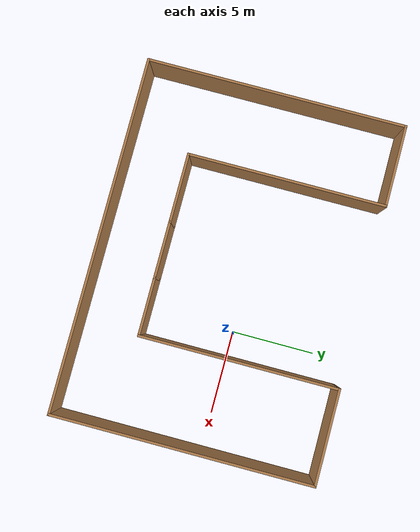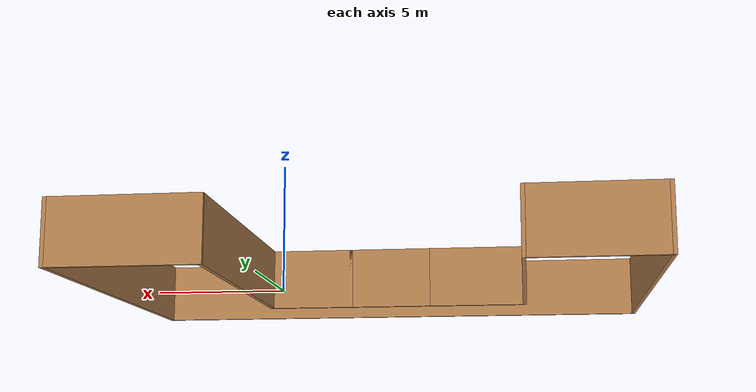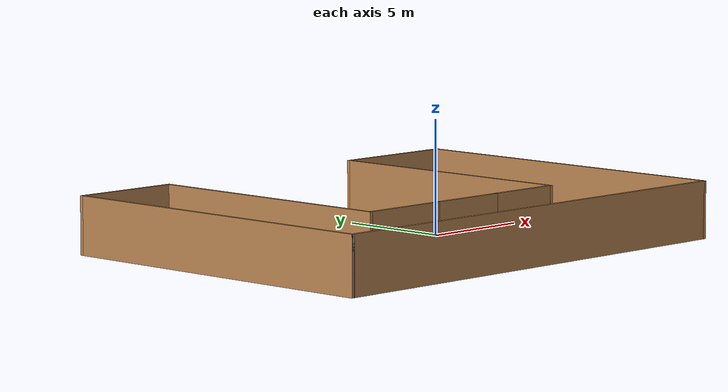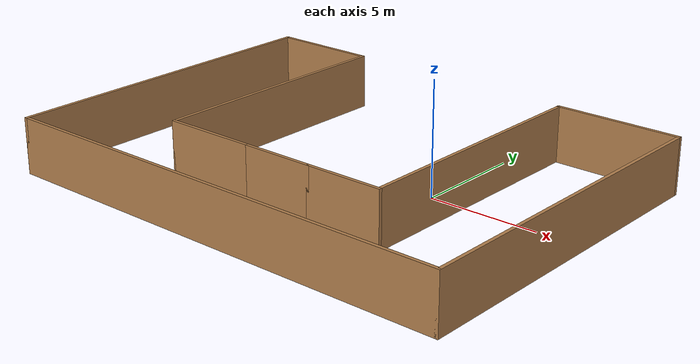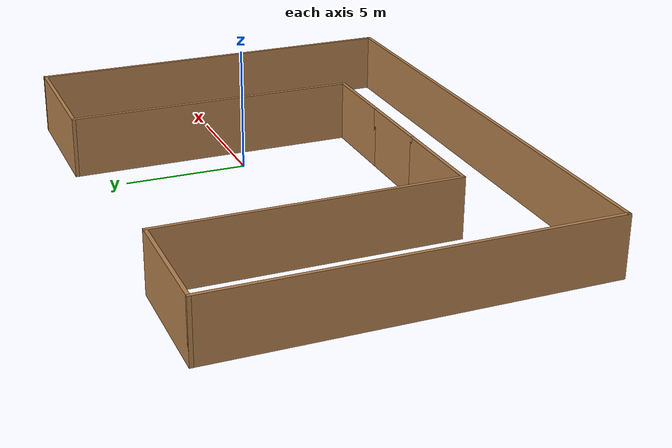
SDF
<?xml version='1.0'?>
<sdf version='1.7'>
  <model name='u_hallway_filled'>
    <pose>-3.53689 -1.1202 0 0 -0 0</pose>
    <link name='Wall_1'>
      <collision name='Wall_1_Collision'>
        <geometry>
          <box>
            <size>15.75 0.15 2.5</size>
          </box>
        </geometry>
        <pose>0 0 1.25 0 -0 0</pose>
      </collision>
      <visual name='Wall_1_Visual'>
        <pose>0 0 1.25 0 -0 0</pose>
        <geometry>
          <box>
            <size>15.75 0.15 2.5</size>
          </box>
        </geometry>
        <material>
          <script>
            <uri>file://media/materials/scripts/gazebo.material</uri>
            <name>Gazebo/Wood</name>
          </script>
          <ambient>1 1 1 1</ambient>
        </material>
        <meta>
          <layer>0</layer>
        </meta>
      </visual>
      <pose>-10.675 0 0 0 -0 -1.5708</pose>
    </link>
    <link name='Wall_13'>
      <collision name='Wall_13_Collision'>
        <geometry>
          <box>
            <size>5 0.15 2.5</size>
          </box>
        </geometry>
        <pose>0 0 1.25 0 -0 0</pose>
      </collision>
      <visual name='Wall_13_Visual'>
        <pose>0 0 1.25 0 -0 0</pose>
        <geometry>
          <box>
            <size>5 0.15 2.5</size>
          </box>
        </geometry>
        <material>
          <script>
            <uri>file://media/materials/scripts/gazebo.material</uri>
            <name>Gazebo/Wood</name>
          </script>
          <ambient>1 1 1 1</ambient>
        </material>
        <meta>
          <layer>0</layer>
        </meta>
      </visual>
      <pose>-8.25 7.8 0 0 -0 0</pose>
    </link>
    <link name='Wall_14'>
      <collision name='Wall_14_Collision'>
        <geometry>
          <box>
            <size>12 0.15 2.5</size>
          </box>
        </geometry>
        <pose>0 0 1.25 0 -0 0</pose>
      </collision>
      <visual name='Wall_14_Visual'>
        <pose>0 0 1.25 0 -0 0</pose>
        <geometry>
          <box>
            <size>12 0.15 2.5</size>
          </box>
        </geometry>
        <material>
          <script>
            <uri>file://media/materials/scripts/gazebo.material</uri>
            <name>Gazebo/Wood</name>
          </script>
          <ambient>1 1 1 1</ambient>
        </material>
        <meta>
          <layer>0</layer>
        </meta>
      </visual>
      <pose>-5.825 1.875 0 0 -0 -1.5708</pose>
    </link>
    <link name='Wall_2'>
      <collision name='Wall_2_Collision'>
        <geometry>
          <box>
            <size>0.15 0.15 2.5</size>
          </box>
        </geometry>
        <pose>0 0 1.25 0 -0 0</pose>
      </collision>
      <visual name='Wall_2_Visual'>
        <pose>0 0 1.25 0 -0 0</pose>
        <geometry>
          <box>
            <size>0.15 0.15 2.5</size>
          </box>
        </geometry>
        <material>
          <script>
            <uri>file://media/materials/scripts/gazebo.material</uri>
            <name>Gazebo/Grey</name>
          </script>
          <ambient>1 1 1 1</ambient>
        </material>
        <meta>
          <layer>0</layer>
        </meta>
      </visual>
      <pose>-10.675 -7.8 0 0 -0 0</pose>
    </link>
    <link name='Wall_24'>
      <collision name='Wall_24_Collision'>
        <geometry>
          <box>
            <size>4.25 0.15 2.5</size>
          </box>
        </geometry>
        <pose>0 0 1.25 0 -0 0</pose>
      </collision>
      <visual name='Wall_24_Visual'>
        <pose>0 0 1.25 0 -0 0</pose>
        <geometry>
          <box>
            <size>4.25 0.15 2.5</size>
          </box>
        </geometry>
        <material>
          <script>
            <uri>file://media/materials/scripts/gazebo.material</uri>
            <name>Gazebo/Wood</name>
          </script>
          <ambient>1 1 1 1</ambient>
        </material>
        <meta>
          <layer>0</layer>
        </meta>
      </visual>
      <pose>-3.775 -4.05 0 0 -0 0</pose>
    </link>
    <link name='Wall_25'>
      <collision name='Wall_25_Collision'>
        <geometry>
          <box>
            <size>3.5 0.15 2.5</size>
          </box>
        </geometry>
        <pose>0 0 1.25 0 -0 0</pose>
      </collision>
      <visual name='Wall_25_Visual'>
        <pose>0 0 1.25 0 -0 0</pose>
        <geometry>
          <box>
            <size>3.5 0.15 2.5</size>
          </box>
        </geometry>
        <material>
          <script>
            <uri>file://media/materials/scripts/gazebo.material</uri>
            <name>Gazebo/Wood</name>
          </script>
          <ambient>1 1 1 1</ambient>
        </material>
        <meta>
          <layer>0</layer>
        </meta>
      </visual>
      <pose>-0.05 -4.05 0 0 -0 0</pose>
    </link>
    <link name='Wall_26'>
      <collision name='Wall_26_Collision'>
        <geometry>
          <box>
            <size>3.6 0.15 2.5</size>
          </box>
        </geometry>
        <pose>0 0 1.25 0 -0 0</pose>
      </collision>
      <visual name='Wall_26_Visual'>
        <pose>0 0 1.25 0 -0 0</pose>
        <geometry>
          <box>
            <size>3.6 0.15 2.5</size>
          </box>
        </geometry>
        <material>
          <script>
            <uri>file://media/materials/scripts/gazebo.material</uri>
            <name>Gazebo/Wood</name>
          </script>
          <ambient>1 1 1 1</ambient>
        </material>
        <meta>
          <layer>0</layer>
        </meta>
      </visual>
      <pose>3.35 -4.05 0 0 -0 0</pose>
    </link>
    <link name='Wall_3'>
      <collision name='Wall_3_Collision'>
        <geometry>
          <box>
            <size>21.5 0.15 2.5</size>
          </box>
        </geometry>
        <pose>0 0 1.25 0 -0 0</pose>
      </collision>
      <visual name='Wall_3_Visual'>
        <pose>0 0 1.25 0 -0 0</pose>
        <geometry>
          <box>
            <size>21.5 0.15 2.5</size>
          </box>
        </geometry>
        <material>
          <script>
            <uri>file://media/materials/scripts/gazebo.material</uri>
            <name>Gazebo/Wood</name>
          </script>
          <ambient>1 1 1 1</ambient>
        </material>
        <meta>
          <layer>0</layer>
        </meta>
      </visual>
      <pose>0 -7.8 0 0 -0 0</pose>
    </link>
    <link name='Wall_4'>
      <collision name='Wall_4_Collision'>
        <geometry>
          <box>
            <size>15.75 0.15 2.5</size>
          </box>
        </geometry>
        <pose>0 0 1.25 0 -0 0</pose>
      </collision>
      <visual name='Wall_4_Visual'>
        <pose>0 0 1.25 0 -0 0</pose>
        <geometry>
          <box>
            <size>15.75 0.15 2.5</size>
          </box>
        </geometry>
        <material>
          <script>
            <uri>file://media/materials/scripts/gazebo.material</uri>
            <name>Gazebo/Wood</name>
          </script>
          <ambient>1 1 1 1</ambient>
        </material>
        <meta>
          <layer>0</layer>
        </meta>
      </visual>
      <pose>10.675 0 0 0 -0 1.5708</pose>
    </link>
    <link name='Wall_5'>
      <collision name='Wall_5_Collision'>
        <geometry>
          <box>
            <size>5.75 0.15 2.5</size>
          </box>
        </geometry>
        <pose>0 0 1.25 0 -0 0</pose>
      </collision>
      <visual name='Wall_5_Visual'>
        <pose>0 0 1.25 0 -0 0</pose>
        <geometry>
          <box>
            <size>5.75 0.15 2.5</size>
          </box>
        </geometry>
        <material>
          <script>
            <uri>file://media/materials/scripts/gazebo.material</uri>
            <name>Gazebo/Wood</name>
          </script>
          <ambient>1 1 1 1</ambient>
        </material>
        <meta>
          <layer>0</layer>
        </meta>
      </visual>
      <pose>7.875 7.8 0 0 -0 3.14159</pose>
    </link>
    <link name='Wall_6'>
      <collision name='Wall_6_Collision'>
        <geometry>
          <box>
            <size>12 0.15 2.5</size>
          </box>
        </geometry>
        <pose>0 0 1.25 0 -0 0</pose>
      </collision>
      <visual name='Wall_6_Visual'>
        <pose>0 0 1.25 0 -0 0</pose>
        <geometry>
          <box>
            <size>12 0.15 2.5</size>
          </box>
        </geometry>
        <material>
          <script>
            <uri>file://media/materials/scripts/gazebo.material</uri>
            <name>Gazebo/Wood</name>
          </script>
          <ambient>1 1 1 1</ambient>
        </material>
        <meta>
          <layer>0</layer>
        </meta>
      </visual>
      <pose>5.075 1.875 0 0 -0 -1.5708</pose>
    </link>
    <static>1</static>
  </model>
</sdf>
